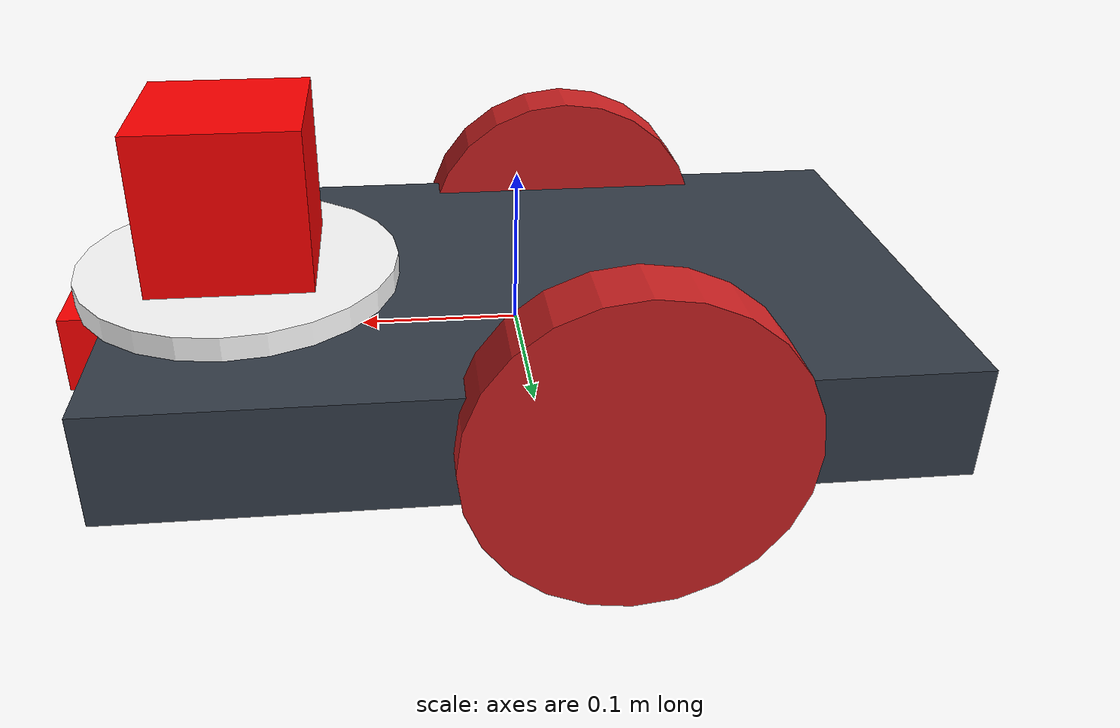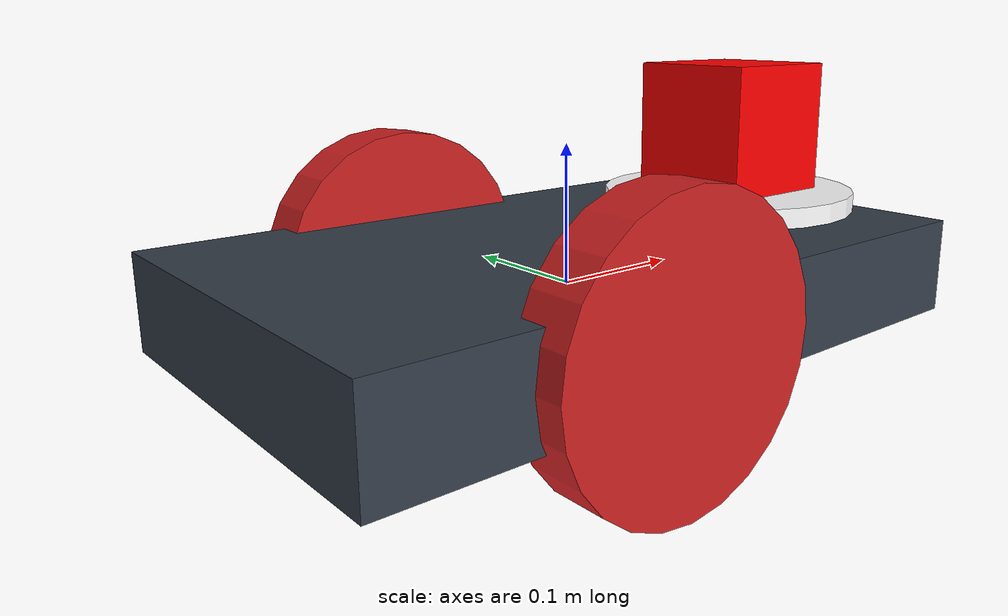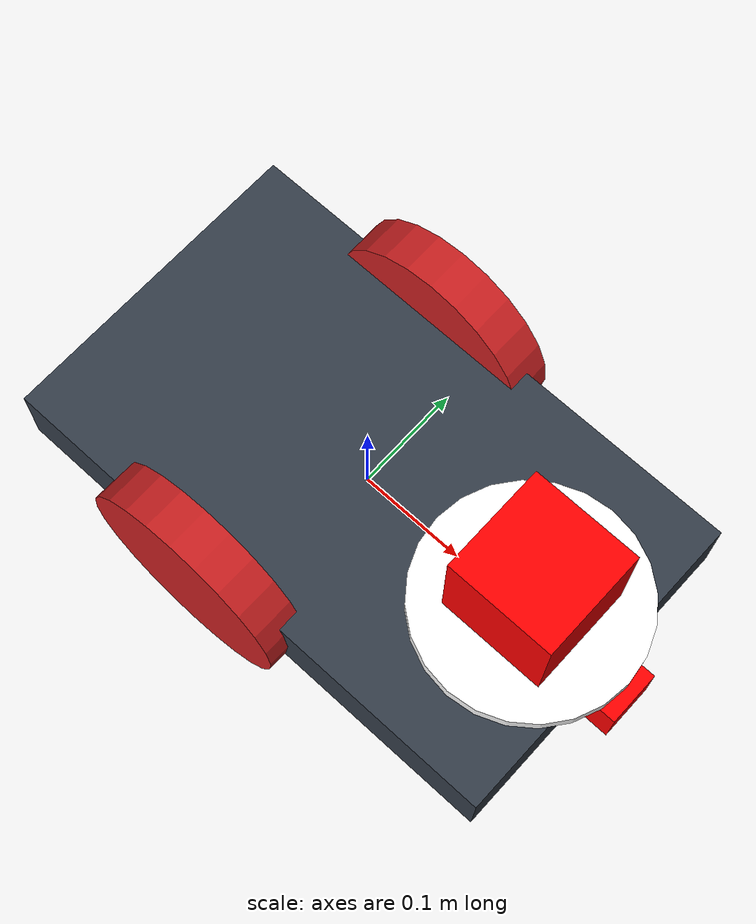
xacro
<?xml version="1.0"?>
<robot xmlns:xacro="http://www.ros.org/wiki/xacro" name="robot2_laser_xacro">
<xacro:include filename="$(find exp_final)/urdf/robot2_laser.gazebo"/>

	<xacro:property name="length_wheel" value="0.04" />
	<xacro:property name="radius_wheel" value="0.1" />

	<xacro:macro name="default_inertial" params="mass">
               <inertial>
                       <mass value="${mass}" />
                       <origin rpy="0 1.5707 1.5707" xyz="0 0 0"/>
                       <inertia ixx="0.000526666666667" ixy="0" ixz="0" iyy="0.000526666666667" iyz="0" izz="0.001"/>
               </inertial>
	</xacro:macro>

    <xacro:macro name="wheel_geometry">
		<geometry>
       			<cylinder length="${length_wheel}" radius="${radius_wheel}"/>
     	</geometry>
	</xacro:macro>

  <material name="black">
    <color rgba="0.0 0.0 0.0 1.0"/>
  </material>
  <material name="blue">
    <color rgba="0.203125 0.23828125 0.28515625 1.0"/>
  </material>
  <material name="green">
    <color rgba="0.0 0.8 0.0 1.0"/>
  </material>
  <material name="grey">
    <color rgba="0.2 0.2 0.2 1.0"/>
  </material>
  <material name="orange">
    <color rgba="1.0 0.423529411765 0.0392156862745 1.0"/>
  </material>
  <material name="brown">
    <color rgba="0.870588235294 0.811764705882 0.764705882353 1.0"/>
  </material>
  <material name="red">
    <color rgba="0.80078125 0.12890625 0.1328125 1.0"/>
  </material>
  <material name="white">
    <color rgba="1.0 1.0 1.0 1.0"/>
  </material>

	  <link name="link_chassis">
    <!-- pose and inertial -->
    <pose>0 0 0.1 0 0 0</pose>
    <inertial>
      <mass value="5"/>
      <origin rpy="0 0 0" xyz="0 0 0.1"/>
      <inertia ixx="0.0395416666667" ixy="0" ixz="0" iyy="0.106208333333" iyz="0" izz="0.106208333333"/>
    </inertial>
    <!-- body -->
    <collision name="collision_chassis">
      <geometry>
        <box size="0.5 0.3 0.07"/>
      </geometry>
    </collision>
    <visual>
      <origin rpy="0 0 0" xyz="0 0 0"/>
      <geometry>
        <box size="0.5 0.3 0.07"/>
      </geometry>
      <material name="blue"/>
    </visual>
    <!-- caster front -->
    <collision name="caster_front_collision">
      <origin rpy=" 0 0 0" xyz="0.35 0 -0.05"/>
      <geometry>
        <sphere radius="0.05"/>
      </geometry>
    </collision>
    <visual name="caster_front_visual">
      <origin rpy=" 0 0 0" xyz="0.2 0 -0.05"/>
      <geometry>
        <sphere radius="0.05"/>
      </geometry>
    </visual>
  </link>

   <link name="link_right_wheel">
    <xacro:default_inertial mass="0.2"/>
    <collision name="link_right_wheel_collision">
      <origin rpy="0 1.5707 1.5707" xyz="0 0 0"/>
      <xacro:wheel_geometry />
    </collision>
    <visual name="link_right_wheel_visual">
      <origin rpy="0 1.5707 1.5707" xyz="0 0 0"/>
      <xacro:wheel_geometry />
      <material name="red"/>
    </visual>
  </link>

   <link name="link_left_wheel">
    <xacro:default_inertial mass="0.2"/>
    <collision name="link_left_wheel_collision">
      <origin rpy="0 1.5707 1.5707" xyz="0 0 0"/>
      <xacro:wheel_geometry />
    </collision>
    <visual name="link_left_wheel_visual">
      <origin rpy="0 1.5707 1.5707" xyz="0 0 0"/>
      <xacro:wheel_geometry />
      <material name="red"/>
    </visual>
  </link>

  <joint name="joint_right_wheel" type="continuous">
    <origin rpy="0 0 0" xyz="-0.05 0.15 0"/>
    <child link="link_right_wheel"/>
    <parent link="link_chassis"/>
    <axis rpy="0 0 0" xyz="0 1 0"/>
    <limit effort="10000" velocity="1000"/>
    <joint_properties damping="1.0" friction="1.0"/>
  </joint>

  <joint name="joint_left_wheel" type="continuous">
    <origin rpy="0 0 0" xyz="-0.05 -0.15 0"/>
    <child link="link_left_wheel"/>
    <parent link="link_chassis"/>
    <axis rpy="0 0 0" xyz="0 1 0"/>
    <limit effort="10000" velocity="1000"/>
    <joint_properties damping="1.0" friction="1.0"/>
  </joint>

<!-- ########################## Roteating Neck ########################## -->
<link name="neck_link">
  <!-- pose and inertial -->
  <inertial>
    <mass value="1e-5" />
    <origin xyz="0 0 0" rpy="0 0 0"/>
    <inertia ixx="1e-6" ixy="0" ixz="0" iyy="1e-6" iyz="0" izz="1e-6" />
  </inertial>
  <!-- body -->
  <collision name="collision_neck">
    <geometry>
      <cylinder length="0.015" radius="0.1"/>
    </geometry>
  </collision>
  <visual>
    <origin rpy="0 0 0" xyz="0 0 0"/>
    <geometry>
      <cylinder length="0.015" radius="0.1"/>
    </geometry>
    <material name="white"/>
  </visual>
  </link>

  <!-- Joint Neck -->
  <joint name="neck_joint" type="revolute">
    <axis xyz="0 0 1" />
    <origin xyz="0.175 0 0.0425" rpy="0 0 0"/>
    <parent link="link_chassis"/>
    <child link="neck_link"/>
    <limit lower="-0.785" upper="0.785" effort="10" velocity="3" />
  </joint>

<!-- Set trasmission for the neck -->

<transmission name="neck_joint_trans">
	<type>transmission_interface/SimpleTransmission</type>
	<joint name="neck_joint">
		<hardwareInterface>hardware_interface/EffortJointInterface</hardwareInterface>
	</joint>
	<actuator name="motor1">
		<hardwareInterface>hardware_interface/EffortJointInterface</hardwareInterface>
		<mechanicalInterface>1</mechanicalInterface>
	</actuator>
</transmission>

  <!-- ########################## Sensors ##########################-->
  <link name="hokuyo_link">
	    <collision>
	      <origin xyz="0 0 0" rpy="0 0 0"/>
	      <geometry>
		<box size="0.05 0.05 0.05"/>
	      </geometry>
	    </collision>
	    <visual>
	      <origin xyz="0 0 0" rpy="0 0 0"/>
	      <geometry>
		<box size="0.05 0.05 0.05"/>
	      </geometry>
	      <material name="red">
		<color rgba="1 0 0 1"/>
	      </material>
	    </visual>
	    <inertial>
	      <mass value="1e-5" />
	      <origin xyz="0 0 0" rpy="0 0 0"/>
	      <inertia ixx="1e-6" ixy="0" ixz="0" iyy="1e-6" iyz="0" izz="1e-6" />
	    </inertial>
  </link>

  <joint name="hokuyo_joint" type="fixed">
	    <axis xyz="0 1 0" />
	    <origin xyz="0.26 0 0" rpy="0 0 0"/>
	    <parent link="link_chassis"/>
	    <child link="hokuyo_link"/>
	 </joint>
<!-- Camera -->
<link name="camera_link">
  <collision>
    <origin xyz="0 0 0" rpy="0 0 0"/>
    <geometry>
<box size="0.1 0.1 0.1"/>
    </geometry>
  </collision>
  <visual>
    <origin xyz="0 0 0" rpy="0 0 0"/>
    <geometry>
<box size="0.1 0.1 0.1"/>
    </geometry>
    <material name="red">
<color rgba="1 0 0 1"/>
    </material>
  </visual>
  <inertial>
    <mass value="1e-5" />
    <origin xyz="0 0 0" rpy="0 0 0"/>
    <inertia ixx="1e-6" ixy="0" ixz="0" iyy="1e-6" iyz="0" izz="1e-6" />
  </inertial>
</link>

<joint name="camera_joint" type="fixed">
  <axis xyz="0 1 0" />
  <origin xyz="0.175 0 0.1" rpy="0 0 0"/>
  <parent link="link_chassis"/>
  <child link="camera_link"/>
</joint>

</robot>
